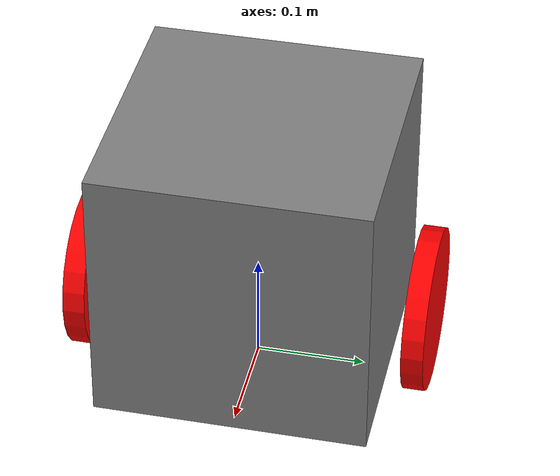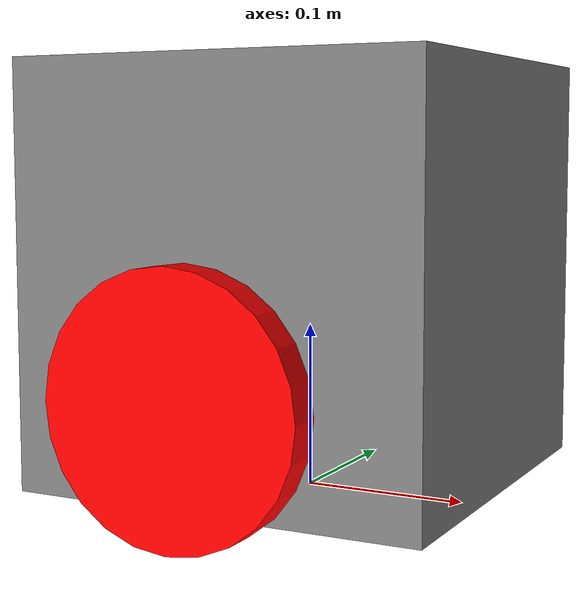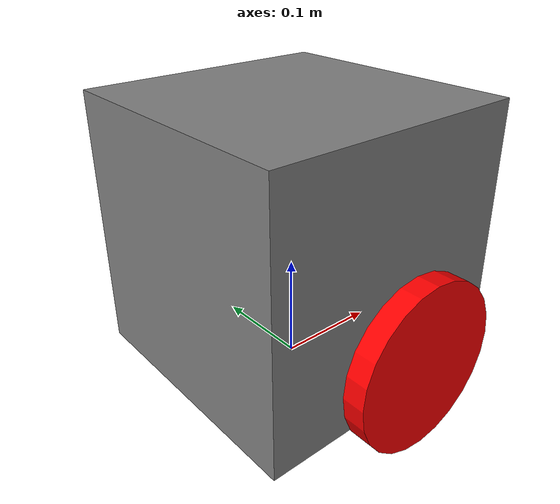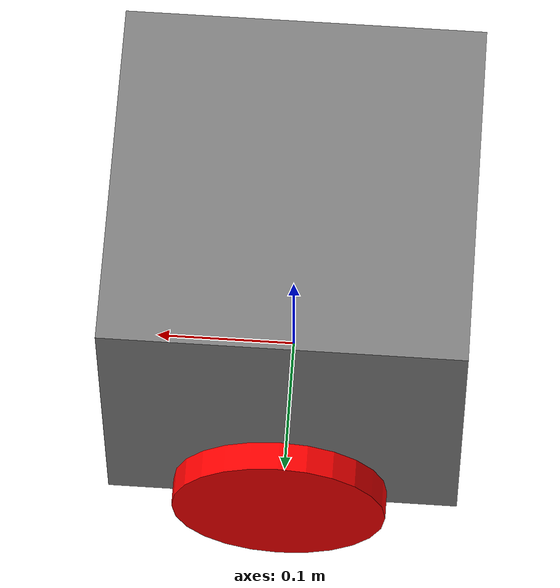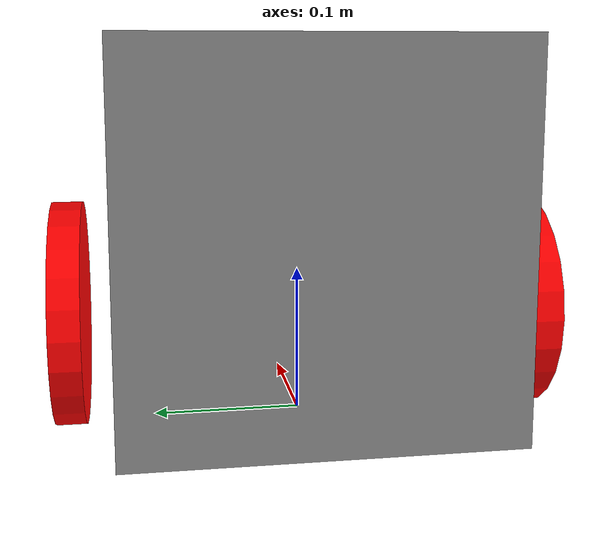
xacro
<?xml version="1.0" encoding="UTF-8"?>
<robot name="gunrobo" xmlns:xacro="http://www.ros.org/wiki/xacro">
    <!-- インクルード -->
    <xacro:include filename="$(find gunrobo_description)/xacro/wheel.xacro"/>
    <xacro:include filename="$(find gunrobo_description)/xacro/free_ball.xacro"/>

    <!-- ロボットサイズの定義 -->
    <xacro:property name="w_size" value="0.25" />
    <xacro:property name="lift_up" value="0.01" />
    <xacro:property name="wheel_r_size" value="0.075" />
    <xacro:property name="wheel_w_size" value="0.02" />
    <xacro:property name="wheel_y_shift" value="0.03" />
    <xacro:property name="ball_size" value="0.0048" />
    <xacro:property name="ball_shift" value="0.1" />

    <link name="base_footprint" >
        <origin rpy="0 0 0" xyz="0 0 0"/>
    </link>

    <joint name="footprint_to_base" type="fixed">
        <parent link="base_footprint" />
        <child link="base_link" />
        <origin xyz="0 0 0.135" rpy="0 0 0" />
    </joint>

    <!-- body -->
    <link name="base_link">
        <visual>
            <geometry>
                <box size="${w_size} ${w_size} ${w_size}" />
            </geometry>
            <material name="gray">
                <color rgba="0.5 0.5 0.5 2.5"/>
            </material>
        </visual>
        <inertial>
            <xacro:property name="mass" value="20" />
            <xacro:property name="inertia_sphere" value="${mass*w_size*w_size/5}" />
            <mass value="${mass}"/>
            <inertia ixx="${inertia_sphere}" ixy="0" ixz="0"
                iyy="${inertia_sphere}" iyz="0"
                izz="${inertia_sphere}"/>
        </inertial>
        <gazebo reference="base_link">
            <material>Gazebo/Gray</material>
        </gazebo>
    </link>

    <!-- wheels -->
    <xacro:wheel prefix="left" parent="base_link" r_size="${wheel_r_size}" w_size="${wheel_w_size}">
        <origin
            xyz="0.0 ${w_size / 2 + wheel_y_shift} ${- w_size / 2 + wheel_r_size - lift_up}"
            rpy="${-pi/2} 0.0 0.0" />
        <axis xyz="0.0 0.0 1.0" />
    </xacro:wheel>
    <xacro:wheel prefix="right" parent="base_link" r_size="${wheel_r_size}" w_size="${wheel_w_size}">
        <origin
            xyz="0.0 ${- w_size / 2 - wheel_y_shift} ${- w_size / 2 + wheel_r_size - lift_up}"
            rpy="${-pi/2} 0.0 0.0" />
        <axis xyz="0.0 0.0 1.0" />
    </xacro:wheel>

    <!-- ball -->
    <xacro:free_ball prefix="front" parent="base_link" r_size="${ball_size}">
        <origin xyz="${ball_shift} 0.0 ${- w_size / 2 - ball_size}" />
    </xacro:free_ball>
    <xacro:free_ball prefix="rear" parent="base_link" r_size="${ball_size}">
        <origin xyz="${-ball_shift} 0.0 ${- w_size / 2 - ball_size}" />
    </xacro:free_ball>

    <!-- gazebo plugin -->
    <gazebo>
        <plugin name="gazebo_ros_control" filename="libgazebo_ros_control.so">
            <robotNamespace>/gunrobo</robotNamespace>
            <robotSimType>gazebo_ros_control/DefaultRobotHWSim</robotSimType>
            <legacyModeNS>true</legacyModeNS>
        </plugin>
    </gazebo>
</robot>

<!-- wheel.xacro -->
<robot xmlns:xacro="http://www.ros.org/wiki/xacro">
    <xacro:macro name="wheel" params="prefix parent r_size w_size *joint_origin *joint_axis">
        <xacro:property name="wheel_link" value="${prefix}_wheel" />
        <xacro:property name="wheel_joint" value="${wheel_link}_joint" />
        <xacro:property name="wheel_trans" value="${wheel_link}_trans" />
        <xacro:property name="wheel_motor" value="${wheel_link}_motor" />

        <joint name="${wheel_joint}" type="continuous">
            <parent link="${parent}" />
            <child link="${wheel_link}" />
            <xacro:insert_block name="joint_origin" />
            <xacro:insert_block name="joint_axis" />
            <limit velocity="12.0" effort="0.4" />
            <dynamics damping="0.1" />
        </joint>

        <link name="${wheel_link}">
            <visual>
                <geometry>
                    <cylinder radius="${r_size}" length="${w_size}"/>
                </geometry>
                <material name="red">
                    <color rgba="1.0 0.0 0.0 2.5"/>
                </material>
            </visual>
            <collision>
                <geometry>
                    <cylinder radius="${r_size}" length="${w_size}"/>
                </geometry>
            </collision>
            <inertial>
                <xacro:property name="mass" value="1" />
                <xacro:property name="inertia_ixx" value="${mass*r_size*r_size/4 + mass*w_size*w_size/12}" />
                <xacro:property name="inertia_izz" value="${mass*r_size*r_size/2}" />
                <mass value="${mass}"/>
                <inertia ixx="${inertia_ixx}" ixy="0" ixz="0"
                    iyy="${inertia_ixx}" iyz="0"
                    izz="${inertia_izz}"/>
            </inertial>
        </link>

        <transmission name="${wheel_trans}" type="SimpleTransmission">
            <type>transmission_interface/SimpleTransmission</type>
            <actuator name="${wheel_motor}">
                <mechanicalReduction>1</mechanicalReduction>
            </actuator>
            <joint name="${wheel_joint}">
                <hardwareInterface>hardware_interface/VelocityJointInterface</hardwareInterface>
            </joint>
        </transmission>

        <gazebo reference="${wheel_link}">
            <material>Gazebo/Red</material>
            <mu1>0.9</mu1>
            <mu2>0.9</mu2>
        </gazebo>
    </xacro:macro>
</robot>

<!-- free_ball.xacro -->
<robot xmlns:xacro="http://www.ros.org/wiki/xacro">
    <xacro:macro name="free_ball" params="prefix parent r_size *joint_origin">
        <xacro:property name="free_ball_link" value="${prefix}_free_ball" />
        <xacro:property name="free_ball_joint" value="${prefix}_free_ball_joint" />

        <joint name="${free_ball_joint}" type="fixed">
            <parent link="${parent}" />
            <child link="${free_ball_link}" />
            <xacro:insert_block name="joint_origin" />
        </joint>

        <link name="${free_ball_link}">
            <visual>
                <geometry>
                    <sphere radius="${r_size}" />
                </geometry>
                <material name="red">
                    <color rgba="1.0 0.0 0.0 2.5"/>
                </material>
            </visual>
            <collision>
                <geometry>
                    <sphere radius="${r_size}" />
                </geometry>
            </collision>
            <inertial>
                <xacro:property name="mass" value="0.01" />
                <xacro:property name="inertia_ixx" value="${mass*r_size*r_size/5}" />
                <mass value="${mass}"/>
                <inertia ixx="${inertia_ixx}" ixy="0" ixz="0"
                    iyy="${inertia_ixx}" iyz="0"
                    izz="${inertia_ixx}"/>
            </inertial>
        </link>

        <gazebo reference="${free_ball_link}">
            <material>Gazebo/Red</material>
            <mu1>0.0</mu1>
            <mu2>0.0</mu2>
        </gazebo>
    </xacro:macro>
</robot>
